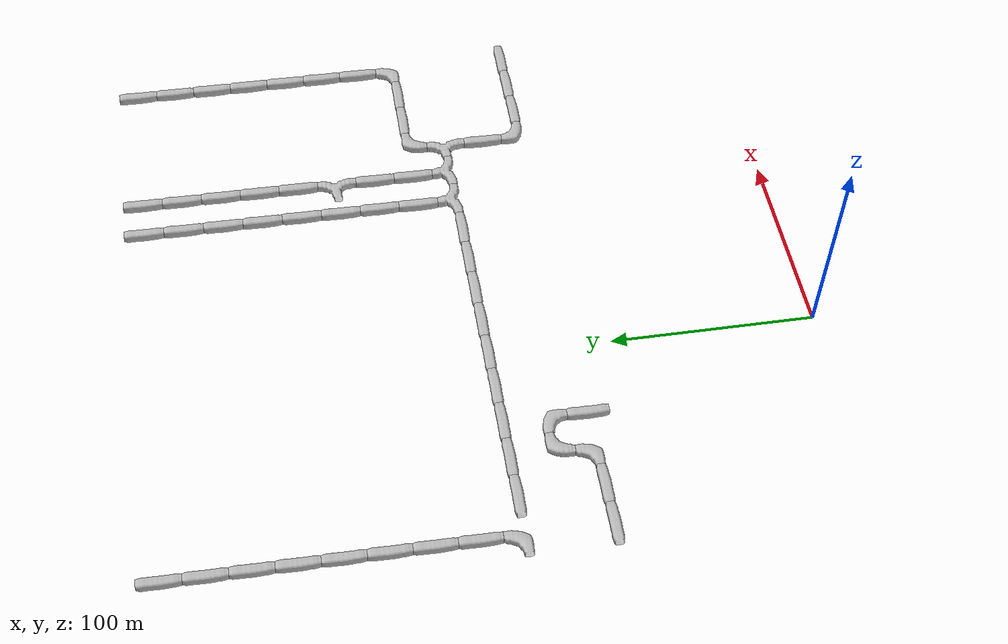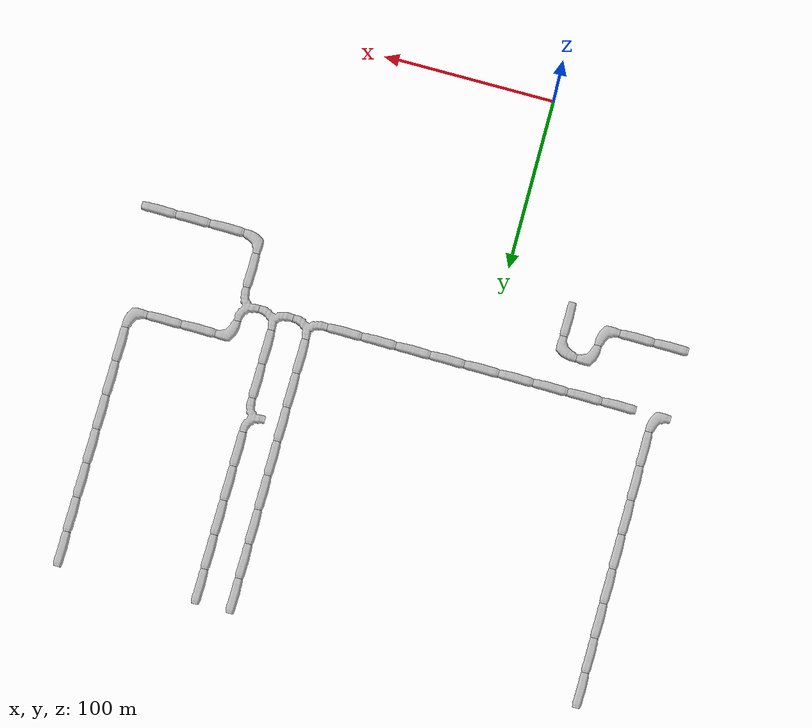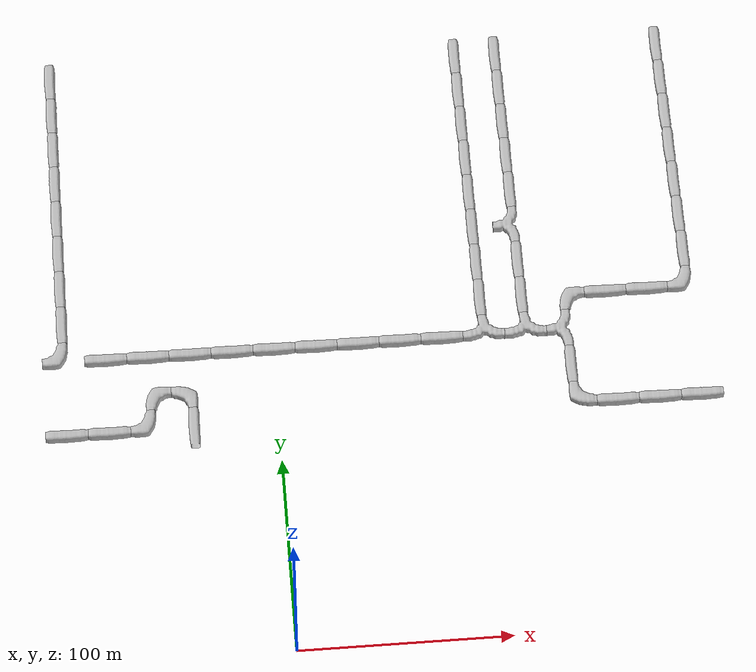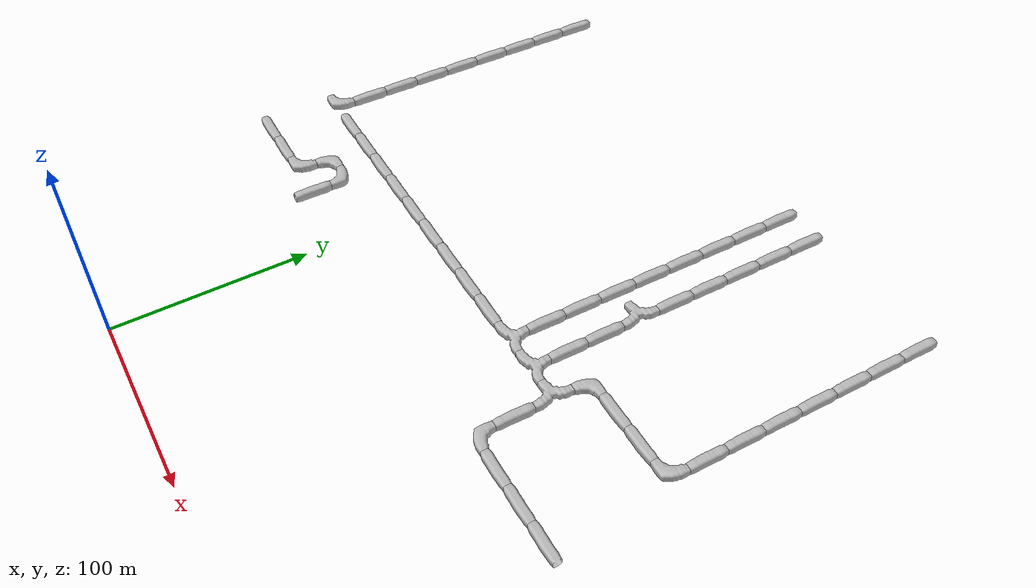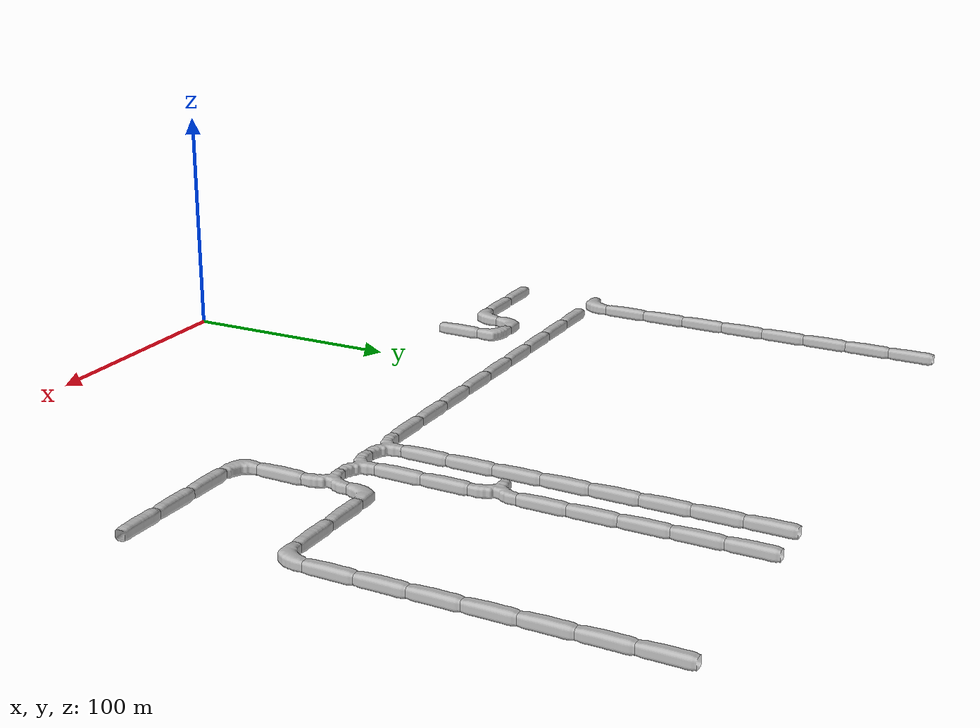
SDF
<sdf version="1.6">
 <world name="cave_32000">
  <include>
   <static>true</static>
   <name>cave_-2_6</name>
   <pose>-40 120 0 0 0 0.0</pose>
   <uri>model://cave_straight_20m</uri>
  </include>
  <include>
   <static>true</static>
   <name>cave_-2_7</name>
   <pose>-40 140 0 0 0 3.141592653589793</pose>
   <uri>model://cave_L_20m</uri>
  </include>
  <include>
   <static>true</static>
   <name>cave_-3_7</name>
   <pose>-60 140 0 0 0 -1.5707963267948966</pose>
   <uri>model://cave_L_20m</uri>
  </include>
  <include>
   <static>true</static>
   <name>cave_-3_6</name>
   <pose>-60 120 0 0 0 1.5707963267948966</pose>
   <uri>model://cave_L_20m</uri>
  </include>
  <include>
   <static>true</static>
   <name>cave_-4_6</name>
   <pose>-80 120 0 0 0 1.5707963267948966</pose>
   <uri>model://cave_straight_20m</uri>
  </include>
  <include>
   <static>true</static>
   <name>cave_-5_6</name>
   <pose>-100 120 0 0 0 1.5707963267948966</pose>
   <uri>model://cave_straight_20m</uri>
  </include>
  <include>
   <static>true</static>
   <name>cave_-5_8</name>
   <pose>-100 160 0 0 0 1.5707963267948966</pose>
   <uri>model://cave_L_20m</uri>
  </include>
  <include>
   <static>true</static>
   <name>cave_-5_9</name>
   <pose>-100 180 0 0 0 0.0</pose>
   <uri>model://cave_straight_20m</uri>
  </include>
  <include>
   <static>true</static>
   <name>cave_-5_10</name>
   <pose>-100 200 0 0 0 0.0</pose>
   <uri>model://cave_straight_20m</uri>
  </include>
  <include>
   <static>true</static>
   <name>cave_-5_11</name>
   <pose>-100 220 0 0 0 0.0</pose>
   <uri>model://cave_straight_20m</uri>
  </include>
  <include>
   <static>true</static>
   <name>cave_-5_12</name>
   <pose>-100 240 0 0 0 0.0</pose>
   <uri>model://cave_straight_20m</uri>
  </include>
  <include>
   <static>true</static>
   <name>cave_-5_13</name>
   <pose>-100 260 0 0 0 0.0</pose>
   <uri>model://cave_straight_20m</uri>
  </include>
  <include>
   <static>true</static>
   <name>cave_-5_14</name>
   <pose>-100 280 0 0 0 0.0</pose>
   <uri>model://cave_straight_20m</uri>
  </include>
  <include>
   <static>true</static>
   <name>cave_-5_15</name>
   <pose>-100 300 0 0 0 0.0</pose>
   <uri>model://cave_straight_20m</uri>
  </include>
  <include>
   <static>true</static>
   <name>cave_-5_16</name>
   <pose>-100 320 0 0 0 0.0</pose>
   <uri>model://cave_straight_20m</uri>
  </include>
  <include>
   <static>true</static>
   <name>cave_5_16</name>
   <pose>100 320 0 0 0 0.0</pose>
   <uri>model://cave_straight_20m</uri>
  </include>
  <include>
   <static>true</static>
   <name>cave_5_15</name>
   <pose>100 300 0 0 0 0.0</pose>
   <uri>model://cave_straight_20m</uri>
  </include>
  <include>
   <static>true</static>
   <name>cave_5_14</name>
   <pose>100 280 0 0 0 0.0</pose>
   <uri>model://cave_straight_20m</uri>
  </include>
  <include>
   <static>true</static>
   <name>cave_5_13</name>
   <pose>100 260 0 0 0 0.0</pose>
   <uri>model://cave_straight_20m</uri>
  </include>
  <include>
   <static>true</static>
   <name>cave_5_12</name>
   <pose>100 240 0 0 0 0.0</pose>
   <uri>model://cave_straight_20m</uri>
  </include>
  <include>
   <static>true</static>
   <name>cave_5_11</name>
   <pose>100 220 0 0 0 0.0</pose>
   <uri>model://cave_straight_20m</uri>
  </include>
  <include>
   <static>true</static>
   <name>cave_5_10</name>
   <pose>100 200 0 0 0 0.0</pose>
   <uri>model://cave_straight_20m</uri>
  </include>
  <include>
   <static>true</static>
   <name>cave_5_9</name>
   <pose>100 180 0 0 0 0.0</pose>
   <uri>model://cave_straight_20m</uri>
  </include>
  <include>
   <static>true</static>
   <name>cave_5_8</name>
   <pose>100 160 0 0 0 0.0</pose>
   <uri>model://cave_3way_20m</uri>
  </include>
  <include>
   <static>true</static>
   <name>cave_6_8</name>
   <pose>120 160 0 0 0 0.0</pose>
   <uri>model://cave_3way_20m</uri>
  </include>
  <include>
   <static>true</static>
   <name>cave_7_8</name>
   <pose>140 160 0 0 0 1.5707963267948966</pose>
   <uri>model://cave_3way_20m</uri>
  </include>
  <include>
   <static>true</static>
   <name>cave_7_7</name>
   <pose>140 140 0 0 0 0.0</pose>
   <uri>model://cave_straight_20m</uri>
  </include>
  <include>
   <static>true</static>
   <name>cave_7_6</name>
   <pose>140 120 0 0 0 0.0</pose>
   <uri>model://cave_L_20m</uri>
  </include>
  <include>
   <static>true</static>
   <name>cave_8_6</name>
   <pose>160 120 0 0 0 1.5707963267948966</pose>
   <uri>model://cave_straight_20m</uri>
  </include>
  <include>
   <static>true</static>
   <name>cave_9_6</name>
   <pose>180 120 0 0 0 1.5707963267948966</pose>
   <uri>model://cave_straight_20m</uri>
  </include>
  <include>
   <static>true</static>
   <name>cave_10_6</name>
   <pose>200 120 0 0 0 1.5707963267948966</pose>
   <uri>model://cave_straight_20m</uri>
  </include>
  <include>
   <static>true</static>
   <name>cave_7_9</name>
   <pose>140 180 0 0 0 -1.5707963267948966</pose>
   <uri>model://cave_L_20m</uri>
  </include>
  <include>
   <static>true</static>
   <name>cave_8_9</name>
   <pose>160 180 0 0 0 1.5707963267948966</pose>
   <uri>model://cave_straight_20m</uri>
  </include>
  <include>
   <static>true</static>
   <name>cave_9_9</name>
   <pose>180 180 0 0 0 1.5707963267948966</pose>
   <uri>model://cave_straight_20m</uri>
  </include>
  <include>
   <static>true</static>
   <name>cave_10_9</name>
   <pose>200 180 0 0 0 1.5707963267948966</pose>
   <uri>model://cave_L_20m</uri>
  </include>
  <include>
   <static>true</static>
   <name>cave_10_10</name>
   <pose>200 200 0 0 0 0.0</pose>
   <uri>model://cave_straight_20m</uri>
  </include>
  <include>
   <static>true</static>
   <name>cave_10_11</name>
   <pose>200 220 0 0 0 0.0</pose>
   <uri>model://cave_straight_20m</uri>
  </include>
  <include>
   <static>true</static>
   <name>cave_10_12</name>
   <pose>200 240 0 0 0 0.0</pose>
   <uri>model://cave_straight_20m</uri>
  </include>
  <include>
   <static>true</static>
   <name>cave_10_13</name>
   <pose>200 260 0 0 0 0.0</pose>
   <uri>model://cave_straight_20m</uri>
  </include>
  <include>
   <static>true</static>
   <name>cave_10_14</name>
   <pose>200 280 0 0 0 0.0</pose>
   <uri>model://cave_straight_20m</uri>
  </include>
  <include>
   <static>true</static>
   <name>cave_10_15</name>
   <pose>200 300 0 0 0 0.0</pose>
   <uri>model://cave_straight_20m</uri>
  </include>
  <include>
   <static>true</static>
   <name>cave_10_16</name>
   <pose>200 320 0 0 0 0.0</pose>
   <uri>model://cave_straight_20m</uri>
  </include>
  <include>
   <static>true</static>
   <name>cave_6_9</name>
   <pose>120 180 0 0 0 0.0</pose>
   <uri>model://cave_straight_20m</uri>
  </include>
  <include>
   <static>true</static>
   <name>cave_6_10</name>
   <pose>120 200 0 0 0 0.0</pose>
   <uri>model://cave_straight_20m</uri>
  </include>
  <include>
   <static>true</static>
   <name>cave_6_11</name>
   <pose>120 220 0 0 0 1.5707963267948966</pose>
   <uri>model://cave_3way_20m</uri>
  </include>
  <include>
   <static>true</static>
   <name>cave_6_12</name>
   <pose>120 240 0 0 0 0.0</pose>
   <uri>model://cave_straight_20m</uri>
  </include>
  <include>
   <static>true</static>
   <name>cave_6_13</name>
   <pose>120 260 0 0 0 0.0</pose>
   <uri>model://cave_straight_20m</uri>
  </include>
  <include>
   <static>true</static>
   <name>cave_6_14</name>
   <pose>120 280 0 0 0 0.0</pose>
   <uri>model://cave_straight_20m</uri>
  </include>
  <include>
   <static>true</static>
   <name>cave_6_15</name>
   <pose>120 300 0 0 0 0.0</pose>
   <uri>model://cave_straight_20m</uri>
  </include>
  <include>
   <static>true</static>
   <name>cave_6_16</name>
   <pose>120 320 0 0 0 0.0</pose>
   <uri>model://cave_straight_20m</uri>
  </include>
  <include>
   <static>true</static>
   <name>cave_4_8</name>
   <pose>80 160 0 0 0 1.5707963267948966</pose>
   <uri>model://cave_straight_20m</uri>
  </include>
  <include>
   <static>true</static>
   <name>cave_3_8</name>
   <pose>60 160 0 0 0 1.5707963267948966</pose>
   <uri>model://cave_straight_20m</uri>
  </include>
  <include>
   <static>true</static>
   <name>cave_2_8</name>
   <pose>40 160 0 0 0 1.5707963267948966</pose>
   <uri>model://cave_straight_20m</uri>
  </include>
  <include>
   <static>true</static>
   <name>cave_1_8</name>
   <pose>20 160 0 0 0 1.5707963267948966</pose>
   <uri>model://cave_straight_20m</uri>
  </include>
  <include>
   <static>true</static>
   <name>cave_0_8</name>
   <pose>0 160 0 0 0 1.5707963267948966</pose>
   <uri>model://cave_straight_20m</uri>
  </include>
  <include>
   <static>true</static>
   <name>cave_-1_8</name>
   <pose>-20 160 0 0 0 1.5707963267948966</pose>
   <uri>model://cave_straight_20m</uri>
  </include>
  <include>
   <static>true</static>
   <name>cave_-2_8</name>
   <pose>-40 160 0 0 0 1.5707963267948966</pose>
   <uri>model://cave_straight_20m</uri>
  </include>
  <include>
   <static>true</static>
   <name>cave_-3_8</name>
   <pose>-60 160 0 0 0 1.5707963267948966</pose>
   <uri>model://cave_straight_20m</uri>
  </include>
  <include>
   <static>true</static>
   <name>cave_-4_8</name>
   <pose>-80 160 0 0 0 1.5707963267948966</pose>
   <uri>model://cave_straight_20m</uri>
  </include>
 </world>
</sdf>
